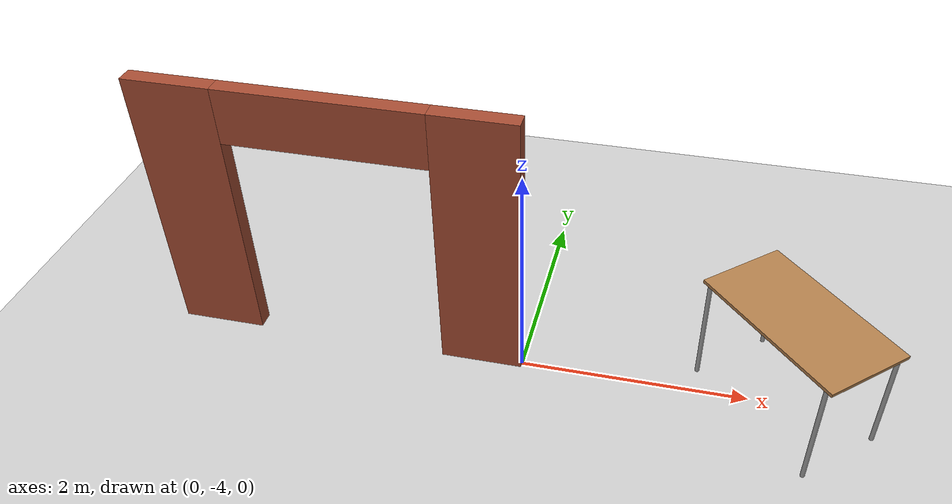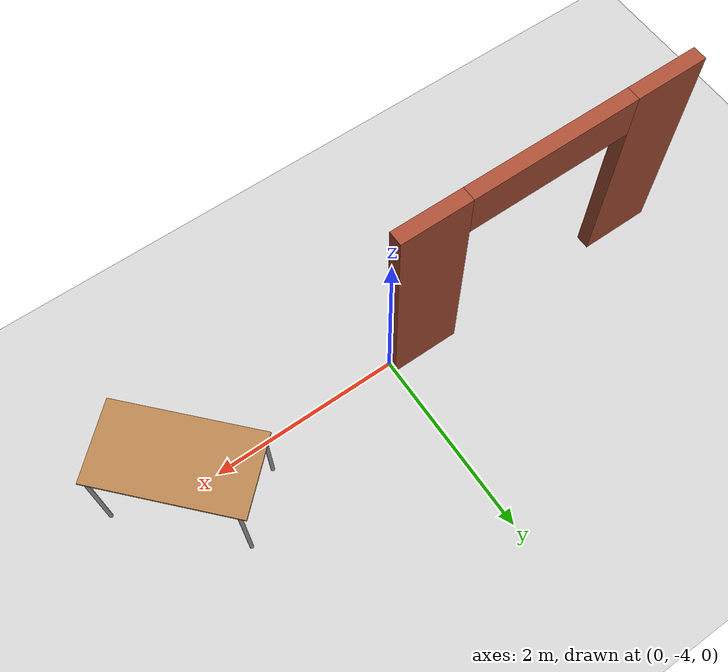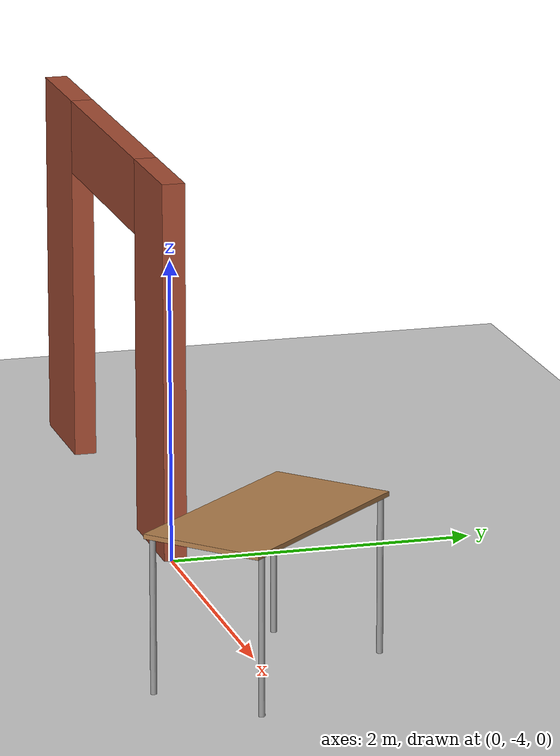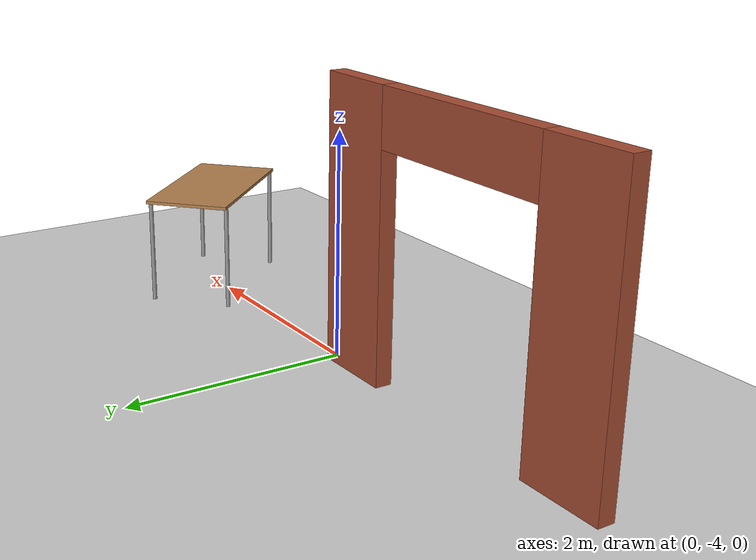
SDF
<sdf version="1.7">
 <world name="default">
  <model name="ground_plane">
   <static>1</static>
   <link name="link">
    <collision name="collision">
     <geometry><plane><normal>0 0 1</normal><size>100 100</size></plane></geometry>
     <surface>
      <contact><collide_bitmask>65535</collide_bitmask></contact>
      <friction><ode><mu>100</mu><mu2>50</mu2></ode></friction>
     </surface>
    </collision>
    <visual name="visual">
     <cast_shadows>0</cast_shadows>
     <geometry><plane><normal>0 0 1</normal><size>100 100</size></plane></geometry>
     <material>
      <script><uri>file://media/materials/scripts/gazebo.material</uri><name>Gazebo/Grey</name></script>
     </material>
    </visual>
   </link>
  </model>
  <model name="basic_house_model">
   <link name="Wall_24">
    <pose>-0.65 -3.725 0 0 -0 0</pose>
    <visual name="Wall_24_Visual_0">
     <pose>-1.24412 0 1.25 0 -0 0</pose>
     <geometry><box><size>0.761761 0.15 2.5</size></box></geometry>
     <material>
      <script><uri>file://media/materials/scripts/gazebo.material</uri><name>Gazebo/Bricks</name></script>
      <ambient>1 1 1 1</ambient>
      <shader type="pixel"/>
     </material>
     <meta><layer>0</layer></meta>
    </visual>
    <visual name="Wall_24_Visual_1">
     <pose>1.25933 0 1.25 0 -0 0</pose>
     <geometry><box><size>0.731332 0.15 2.5</size></box></geometry>
     <material>
      <script><uri>file://media/materials/scripts/gazebo.material</uri><name>Gazebo/Bricks</name></script>
      <ambient>1 1 1 1</ambient>
      <shader type="pixel"/>
     </material>
     <meta><layer>0</layer></meta>
    </visual>
    <visual name="Wall_24_Visual_2">
     <pose>0.015215 0 2.25 0 -0 0</pose>
     <geometry><box><size>1.75691 0.15 0.5</size></box></geometry>
     <material>
      <script><uri>file://media/materials/scripts/gazebo.material</uri><name>Gazebo/Bricks</name></script>
      <ambient>1 1 1 1</ambient>
      <shader type="pixel"/>
     </material>
     <meta><layer>0</layer></meta>
    </visual>
    <collision name="Wall_24_Collision_0">
     <pose>-1.24412 0 1.25 0 -0 0</pose>
     <geometry><box><size>0.761761 0.15 2.5</size></box></geometry>
     <surface>
      <friction>
       <ode><mu>1</mu><mu2>1</mu2><fdir1>0 0 0</fdir1><slip1>0</slip1><slip2>0</slip2></ode>
       <torsional>
        <coefficient>1</coefficient>
        <patch_radius>0</patch_radius>
        <surface_radius>0</surface_radius>
        <use_patch_radius>1</use_patch_radius>
        <ode><slip>0</slip></ode>
       </torsional>
      </friction>
      <bounce><restitution_coefficient>0</restitution_coefficient><threshold>1e+06</threshold></bounce>
      <contact>
       <collide_without_contact>0</collide_without_contact>
       <collide_without_contact_bitmask>1</collide_without_contact_bitmask>
       <collide_bitmask>1</collide_bitmask>
       <ode>
        <soft_cfm>0</soft_cfm>
        <soft_erp>0.2</soft_erp>
        <kp>1e+13</kp>
        <kd>1</kd>
        <max_vel>0.01</max_vel>
        <min_depth>0</min_depth>
       </ode>
       <bullet>
        <split_impulse>1</split_impulse>
        <split_impulse_penetration_threshold>-0.01</split_impulse_penetration_threshold>
        <soft_cfm>0</soft_cfm>
        <soft_erp>0.2</soft_erp>
        <kp>1e+13</kp>
        <kd>1</kd>
       </bullet>
      </contact>
     </surface>
    </collision>
    <collision name="Wall_24_Collision_1">
     <pose>1.25933 0 1.25 0 -0 0</pose>
     <geometry><box><size>0.731332 0.15 2.5</size></box></geometry>
     <surface>
      <friction>
       <ode><mu>1</mu><mu2>1</mu2><fdir1>0 0 0</fdir1><slip1>0</slip1><slip2>0</slip2></ode>
       <torsional>
        <coefficient>1</coefficient>
        <patch_radius>0</patch_radius>
        <surface_radius>0</surface_radius>
        <use_patch_radius>1</use_patch_radius>
        <ode><slip>0</slip></ode>
       </torsional>
      </friction>
      <bounce><restitution_coefficient>0</restitution_coefficient><threshold>1e+06</threshold></bounce>
      <contact>
       <collide_without_contact>0</collide_without_contact>
       <collide_without_contact_bitmask>1</collide_without_contact_bitmask>
       <collide_bitmask>1</collide_bitmask>
       <ode>
        <soft_cfm>0</soft_cfm>
        <soft_erp>0.2</soft_erp>
        <kp>1e+13</kp>
        <kd>1</kd>
        <max_vel>0.01</max_vel>
        <min_depth>0</min_depth>
       </ode>
       <bullet>
        <split_impulse>1</split_impulse>
        <split_impulse_penetration_threshold>-0.01</split_impulse_penetration_threshold>
        <soft_cfm>0</soft_cfm>
        <soft_erp>0.2</soft_erp>
        <kp>1e+13</kp>
        <kd>1</kd>
       </bullet>
      </contact>
     </surface>
    </collision>
    <collision name="Wall_24_Collision_2">
     <pose>0.015215 0 2.25 0 -0 0</pose>
     <geometry><box><size>1.75691 0.15 0.5</size></box></geometry>
     <surface>
      <friction>
       <ode><mu>1</mu><mu2>1</mu2><fdir1>0 0 0</fdir1><slip1>0</slip1><slip2>0</slip2></ode>
       <torsional>
        <coefficient>1</coefficient>
        <patch_radius>0</patch_radius>
        <surface_radius>0</surface_radius>
        <use_patch_radius>1</use_patch_radius>
        <ode><slip>0</slip></ode>
       </torsional>
      </friction>
      <bounce><restitution_coefficient>0</restitution_coefficient><threshold>1e+06</threshold></bounce>
      <contact>
       <collide_without_contact>0</collide_without_contact>
       <collide_without_contact_bitmask>1</collide_without_contact_bitmask>
       <collide_bitmask>1</collide_bitmask>
       <ode>
        <soft_cfm>0</soft_cfm>
        <soft_erp>0.2</soft_erp>
        <kp>1e+13</kp>
        <kd>1</kd>
        <max_vel>0.01</max_vel>
        <min_depth>0</min_depth>
       </ode>
       <bullet>
        <split_impulse>1</split_impulse>
        <split_impulse_penetration_threshold>-0.01</split_impulse_penetration_threshold>
        <soft_cfm>0</soft_cfm>
        <soft_erp>0.2</soft_erp>
        <kp>1e+13</kp>
        <kd>1</kd>
       </bullet>
      </contact>
     </surface>
    </collision>
   </link>
   <static>1</static>
   <pose>-0.976183 -0.248204 0 0 -0 0</pose>
  </model>
  <model name="table">
   <static>1</static>
   <link name="link">
    <collision name="surface">
     <pose>0 0 1 0 -0 0</pose>
     <geometry><box><size>1.5 0.8 0.03</size></box></geometry>
     <surface><friction><ode><mu>0.6</mu><mu2>0.6</mu2></ode></friction></surface>
    </collision>
    <visual name="visual1">
     <pose>0 0 1 0 -0 0</pose>
     <geometry><box><size>1.5 0.8 0.03</size></box></geometry>
     <material>
      <script><uri>file://media/materials/scripts/gazebo.material</uri><name>Gazebo/Wood</name></script>
     </material>
    </visual>
    <collision name="front_left_leg">
     <pose>0.68 0.38 0.5 0 -0 0</pose>
     <geometry><cylinder><radius>0.02</radius><length>1</length></cylinder></geometry>
    </collision>
    <visual name="front_left_leg">
     <pose>0.68 0.38 0.5 0 -0 0</pose>
     <geometry><cylinder><radius>0.02</radius><length>1</length></cylinder></geometry>
     <material>
      <script><uri>file://media/materials/scripts/gazebo.material</uri><name>Gazebo/Grey</name></script>
     </material>
    </visual>
    <collision name="front_right_leg">
     <pose>0.68 -0.38 0.5 0 -0 0</pose>
     <geometry><cylinder><radius>0.02</radius><length>1</length></cylinder></geometry>
    </collision>
    <visual name="front_right_leg">
     <pose>0.68 -0.38 0.5 0 -0 0</pose>
     <geometry><cylinder><radius>0.02</radius><length>1</length></cylinder></geometry>
     <material>
      <script><uri>file://media/materials/scripts/gazebo.material</uri><name>Gazebo/Grey</name></script>
     </material>
    </visual>
    <collision name="back_right_leg">
     <pose>-0.68 -0.38 0.5 0 -0 0</pose>
     <geometry><cylinder><radius>0.02</radius><length>1</length></cylinder></geometry>
    </collision>
    <visual name="back_right_leg">
     <pose>-0.68 -0.38 0.5 0 -0 0</pose>
     <geometry><cylinder><radius>0.02</radius><length>1</length></cylinder></geometry>
     <material>
      <script><uri>file://media/materials/scripts/gazebo.material</uri><name>Gazebo/Grey</name></script>
     </material>
    </visual>
    <collision name="back_left_leg">
     <pose>-0.68 0.38 0.5 0 -0 0</pose>
     <geometry><cylinder><radius>0.02</radius><length>1</length></cylinder></geometry>
    </collision>
    <visual name="back_left_leg">
     <pose>-0.68 0.38 0.5 0 -0 0</pose>
     <geometry><cylinder><radius>0.02</radius><length>1</length></cylinder></geometry>
     <material>
      <script><uri>file://media/materials/scripts/gazebo.material</uri><name>Gazebo/Grey</name></script>
     </material>
    </visual>
   </link>
   <pose>2.28363 -3.9867 0 0 0 -0.825665</pose>
  </model>
 </world>
</sdf>
